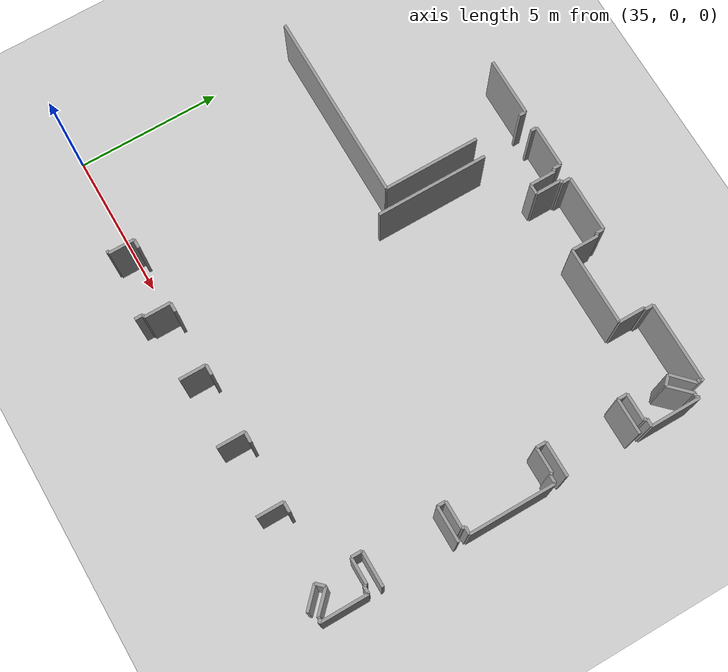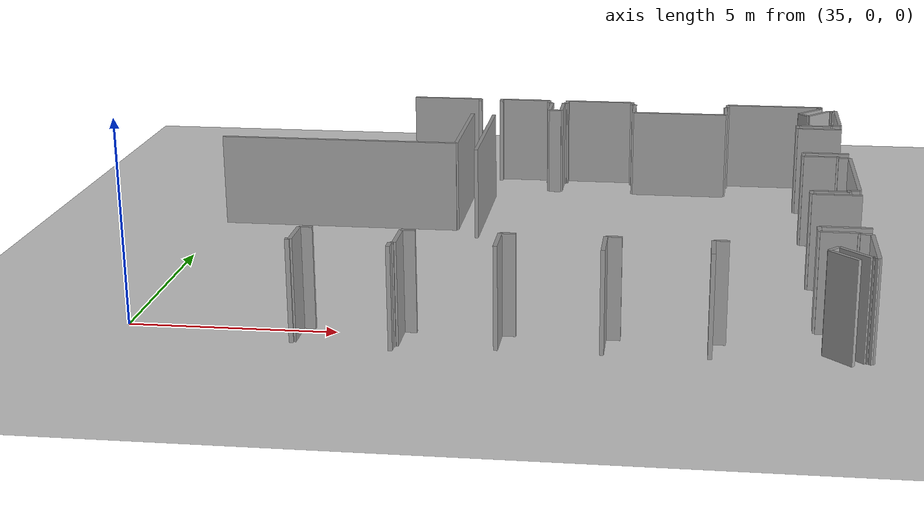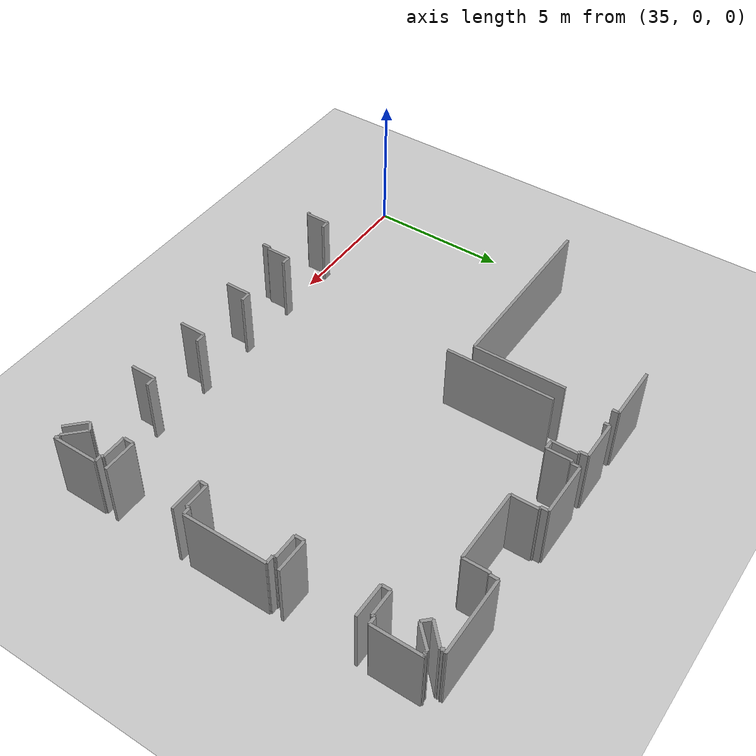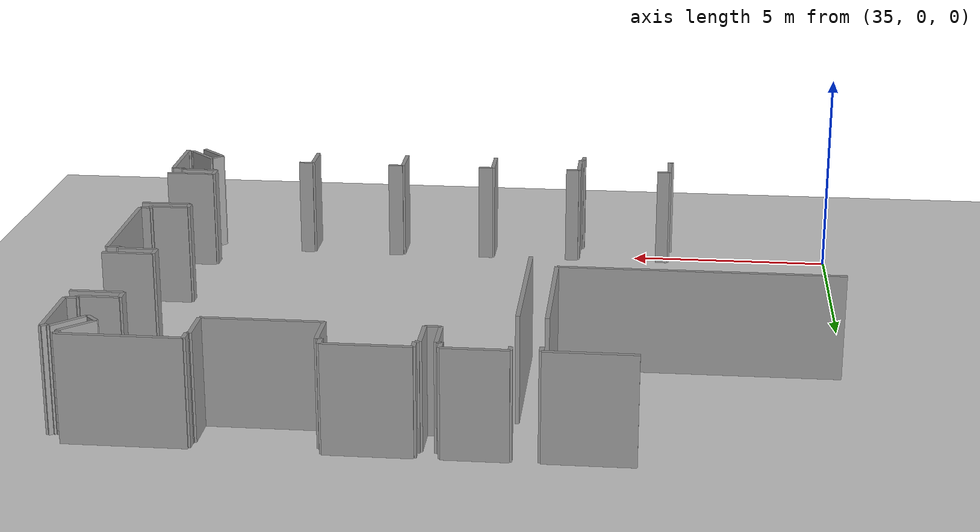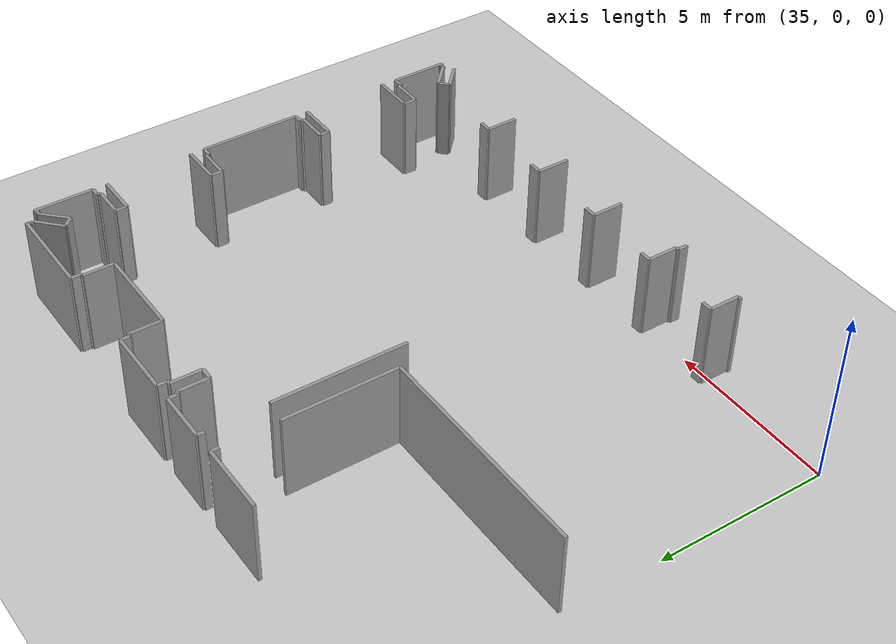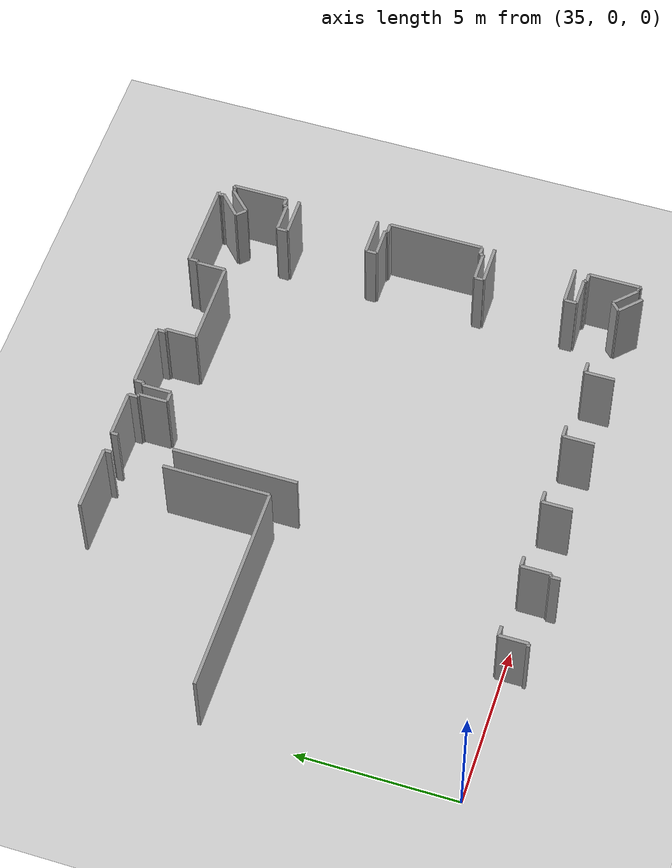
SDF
<sdf version="1.6">
 <world name="default">
  <model name="ground_plane">
   <static>1</static>
   <link name="link">
    <collision name="collision">
     <geometry><plane><normal>0 0 1</normal><size>100 100</size></plane></geometry>
     <surface><friction><ode><mu>100</mu><mu2>50</mu2></ode></friction></surface>
    </collision>
    <visual name="visual">
     <cast_shadows>0</cast_shadows>
     <geometry><plane><normal>0 0 1</normal><size>100 100</size></plane></geometry>
     <material>
      <script><uri>file://media/materials/scripts/gazebo.material</uri><name>Gazebo/Grey</name></script>
     </material>
    </visual>
   </link>
  </model>
  <model name="50010541">
   <static>1</static>
   <link name="Wall_268">
    <collision name="Wall_268_Collision">
     <geometry><box><size>0.360529623094 0.1 2.5</size></box></geometry>
     <pose>0.180264811547 0 1.25 0 0 0</pose>
    </collision>
    <visual name="Wall_268_Visual">
     <pose>0.180264811547 0 1.25 0 0 0</pose>
     <geometry><box><size>0.360529623094 0.1 2.5</size></box></geometry>
     <material>
      <script><uri>file://media/materials/scripts/gazebo.material</uri><name>Gazebo/Grey</name></script>
      <ambient>1 1 1 1</ambient>
     </material>
    </visual>
    <pose>101.927183172 -12.8033717137 0 0 0 3.14159265359</pose>
   </link>
   <link name="Wall_269">
    <collision name="Wall_269_Collision">
     <geometry><box><size>0.927855991266 0.1 2.5</size></box></geometry>
     <pose>0.463927995633 0 1.25 0 0 0</pose>
    </collision>
    <visual name="Wall_269_Visual">
     <pose>0.463927995633 0 1.25 0 0 0</pose>
     <geometry><box><size>0.927855991266 0.1 2.5</size></box></geometry>
     <material>
      <script><uri>file://media/materials/scripts/gazebo.material</uri><name>Gazebo/Grey</name></script>
      <ambient>1 1 1 1</ambient>
     </material>
    </visual>
    <pose>101.566653549 -12.8033717137 0 0 0 -1.57079632679</pose>
   </link>
   <link name="Wall_276">
    <collision name="Wall_276_Collision">
     <geometry><box><size>0.378302210148 0.1 2.5</size></box></geometry>
     <pose>0.189151105074 0 1.25 0 0 0</pose>
    </collision>
    <visual name="Wall_276_Visual">
     <pose>0.189151105074 0 1.25 0 0 0</pose>
     <geometry><box><size>0.378302210148 0.1 2.5</size></box></geometry>
     <material>
      <script><uri>file://media/materials/scripts/gazebo.material</uri><name>Gazebo/Grey</name></script>
      <ambient>1 1 1 1</ambient>
     </material>
    </visual>
    <pose>99.5215365671 -12.7844566032 0 0 0 3.14159265359</pose>
   </link>
   <link name="Wall_277">
    <collision name="Wall_277_Collision">
     <geometry><box><size>0.965686212281 0.1 2.5</size></box></geometry>
     <pose>0.48284310614 0 1.25 0 0 0</pose>
    </collision>
    <visual name="Wall_277_Visual">
     <pose>0.48284310614 0 1.25 0 0 0</pose>
     <geometry><box><size>0.965686212281 0.1 2.5</size></box></geometry>
     <material>
      <script><uri>file://media/materials/scripts/gazebo.material</uri><name>Gazebo/Grey</name></script>
      <ambient>1 1 1 1</ambient>
     </material>
    </visual>
    <pose>99.1432343569 -12.7844566032 0 0 0 -1.57079632679</pose>
   </link>
   <link name="Wall_282">
    <collision name="Wall_282_Collision">
     <geometry><box><size>0.36560750511 0.1 2.5</size></box></geometry>
     <pose>0.182803752555 0 1.25 0 0 0</pose>
    </collision>
    <visual name="Wall_282_Visual">
     <pose>0.182803752555 0 1.25 0 0 0</pose>
     <geometry><box><size>0.36560750511 0.1 2.5</size></box></geometry>
     <material>
      <script><uri>file://media/materials/scripts/gazebo.material</uri><name>Gazebo/Grey</name></script>
      <ambient>1 1 1 1</ambient>
     </material>
    </visual>
    <pose>97.1070036688 -12.8059106547 0 0 0 3.14159265359</pose>
   </link>
   <link name="Wall_283">
    <collision name="Wall_283_Collision">
     <geometry><box><size>0.930648826375 0.1 2.5</size></box></geometry>
     <pose>0.465324413187 0 1.25 0 0 0</pose>
    </collision>
    <visual name="Wall_283_Visual">
     <pose>0.465324413187 0 1.25 0 0 0</pose>
     <geometry><box><size>0.930648826375 0.1 2.5</size></box></geometry>
     <material>
      <script><uri>file://media/materials/scripts/gazebo.material</uri><name>Gazebo/Grey</name></script>
      <ambient>1 1 1 1</ambient>
     </material>
    </visual>
    <pose>96.7413961637 -12.8059106547 0 0 0 -1.57079632679</pose>
   </link>
   <link name="Wall_290">
    <collision name="Wall_290_Collision">
     <geometry><box><size>0.330062331002 0.1 2.5</size></box></geometry>
     <pose>0.165031165501 0 1.25 0 0 0</pose>
    </collision>
    <visual name="Wall_290_Visual">
     <pose>0.165031165501 0 1.25 0 0 0</pose>
     <geometry><box><size>0.330062331002 0.1 2.5</size></box></geometry>
     <material>
      <script><uri>file://media/materials/scripts/gazebo.material</uri><name>Gazebo/Grey</name></script>
      <ambient>1 1 1 1</ambient>
     </material>
    </visual>
    <pose>94.7927589402 -12.8196209361 0 0 0 3.14159265359</pose>
   </link>
   <link name="Wall_291">
    <collision name="Wall_291_Collision">
     <geometry><box><size>0.911098980615 0.1 2.5</size></box></geometry>
     <pose>0.455549490308 0 1.25 0 0 0</pose>
    </collision>
    <visual name="Wall_291_Visual">
     <pose>0.455549490308 0 1.25 0 0 0</pose>
     <geometry><box><size>0.911098980615 0.1 2.5</size></box></geometry>
     <material>
      <script><uri>file://media/materials/scripts/gazebo.material</uri><name>Gazebo/Grey</name></script>
      <ambient>1 1 1 1</ambient>
     </material>
    </visual>
    <pose>94.4626966092 -12.8196209361 0 0 0 -1.57079632679</pose>
   </link>
   <link name="Wall_292">
    <collision name="Wall_292_Collision">
     <geometry><box><size>0.0875934647659 0.1 2.5</size></box></geometry>
     <pose>0.0437967323829 0 1.25 0 0 0</pose>
    </collision>
    <visual name="Wall_292_Visual">
     <pose>0.0437967323829 0 1.25 0 0 0</pose>
     <geometry><box><size>0.0875934647659 0.1 2.5</size></box></geometry>
     <material>
      <script><uri>file://media/materials/scripts/gazebo.material</uri><name>Gazebo/Grey</name></script>
      <ambient>1 1 1 1</ambient>
     </material>
    </visual>
    <pose>94.4626966092 -13.7307199167 0 0 0 3.14159265359</pose>
   </link>
   <link name="Wall_293">
    <collision name="Wall_293_Collision">
     <geometry><box><size>0.285376969266 0.1 2.5</size></box></geometry>
     <pose>0.142688484633 0 1.25 0 0 0</pose>
    </collision>
    <visual name="Wall_293_Visual">
     <pose>0.142688484633 0 1.25 0 0 0</pose>
     <geometry><box><size>0.285376969266 0.1 2.5</size></box></geometry>
     <material>
      <script><uri>file://media/materials/scripts/gazebo.material</uri><name>Gazebo/Grey</name></script>
      <ambient>1 1 1 1</ambient>
     </material>
    </visual>
    <pose>94.3751031445 -13.7307199167 0 0 0 -1.57079632679</pose>
   </link>
   <link name="Wall_298">
    <collision name="Wall_298_Collision">
     <geometry><box><size>0.314828684956 0.1 2.5</size></box></geometry>
     <pose>0.157414342478 0 1.25 0 0 0</pose>
    </collision>
    <visual name="Wall_298_Visual">
     <pose>0.157414342478 0 1.25 0 0 0</pose>
     <geometry><box><size>0.314828684956 0.1 2.5</size></box></geometry>
     <material>
      <script><uri>file://media/materials/scripts/gazebo.material</uri><name>Gazebo/Grey</name></script>
      <ambient>1 1 1 1</ambient>
     </material>
    </visual>
    <pose>92.39853757 -12.8356162645 0 0 0 3.14159265359</pose>
   </link>
   <link name="Wall_299">
    <collision name="Wall_299_Collision">
     <geometry><box><size>0.892437764209 0.1 2.5</size></box></geometry>
     <pose>0.446218882104 0 1.25 0 0 0</pose>
    </collision>
    <visual name="Wall_299_Visual">
     <pose>0.446218882104 0 1.25 0 0 0</pose>
     <geometry><box><size>0.892437764209 0.1 2.5</size></box></geometry>
     <material>
      <script><uri>file://media/materials/scripts/gazebo.material</uri><name>Gazebo/Grey</name></script>
      <ambient>1 1 1 1</ambient>
     </material>
    </visual>
    <pose>92.083708885 -12.8356162645 0 0 0 -1.57079632679</pose>
   </link>
   <link name="Wall_300">
    <collision name="Wall_300_Collision">
     <geometry><box><size>0.109174463331 0.1 2.5</size></box></geometry>
     <pose>0.0545872316657 0 1.25 0 0 0</pose>
    </collision>
    <visual name="Wall_300_Visual">
     <pose>0.0545872316657 0 1.25 0 0 0</pose>
     <geometry><box><size>0.109174463331 0.1 2.5</size></box></geometry>
     <material>
      <script><uri>file://media/materials/scripts/gazebo.material</uri><name>Gazebo/Grey</name></script>
      <ambient>1 1 1 1</ambient>
     </material>
    </visual>
    <pose>92.083708885 -13.7280540287 0 0 0 3.14159265359</pose>
   </link>
   <link name="Wall_314">
    <collision name="Wall_314_Collision">
     <geometry><box><size>3.8722658779 0.1 2.5</size></box></geometry>
     <pose>1.93613293895 0 1.25 0 0 0</pose>
    </collision>
    <visual name="Wall_314_Visual">
     <pose>1.93613293895 0 1.25 0 0 0</pose>
     <geometry><box><size>3.8722658779 0.1 2.5</size></box></geometry>
     <material>
      <script><uri>file://media/materials/scripts/gazebo.material</uri><name>Gazebo/Grey</name></script>
      <ambient>1 1 1 1</ambient>
     </material>
    </visual>
    <pose>95.215492618 -5.82750434794 0 0 0 1.57079632679</pose>
   </link>
   <link name="Wall_315">
    <collision name="Wall_315_Collision">
     <geometry><box><size>0.201591916012 0.1 2.5</size></box></geometry>
     <pose>0.100795958006 0 1.25 0 0 0</pose>
    </collision>
    <visual name="Wall_315_Visual">
     <pose>0.100795958006 0 1.25 0 0 0</pose>
     <geometry><box><size>0.201591916012 0.1 2.5</size></box></geometry>
     <material>
      <script><uri>file://media/materials/scripts/gazebo.material</uri><name>Gazebo/Grey</name></script>
      <ambient>1 1 1 1</ambient>
     </material>
    </visual>
    <pose>95.215492618 -0.221649549973 0 0 0 1.57079632679</pose>
   </link>
   <link name="Wall_316">
    <collision name="Wall_316_Collision">
     <geometry><box><size>1.4497353154 0.1 2.5</size></box></geometry>
     <pose>0.7248676577 0 1.25 0 0 0</pose>
    </collision>
    <visual name="Wall_316_Visual">
     <pose>0.7248676577 0 1.25 0 0 0</pose>
     <geometry><box><size>1.4497353154 0.1 2.5</size></box></geometry>
     <material>
      <script><uri>file://media/materials/scripts/gazebo.material</uri><name>Gazebo/Grey</name></script>
      <ambient>1 1 1 1</ambient>
     </material>
    </visual>
    <pose>95.215492618 -0.0200576339609 0 0 0 0.0</pose>
   </link>
   <link name="Wall_317">
    <collision name="Wall_317_Collision">
     <geometry><box><size>0.281568557755 0.1 2.5</size></box></geometry>
     <pose>0.140784278877 0 1.25 0 0 0</pose>
    </collision>
    <visual name="Wall_317_Visual">
     <pose>0.140784278877 0 1.25 0 0 0</pose>
     <geometry><box><size>0.281568557755 0.1 2.5</size></box></geometry>
     <material>
      <script><uri>file://media/materials/scripts/gazebo.material</uri><name>Gazebo/Grey</name></script>
      <ambient>1 1 1 1</ambient>
     </material>
    </visual>
    <pose>96.6652279334 -0.0200576339609 0 0 0 -1.57079632679</pose>
   </link>
   <link name="Wall_318">
    <collision name="Wall_318_Collision">
     <geometry><box><size>0.101557640308 0.1 2.5</size></box></geometry>
     <pose>0.0507788201541 0 1.25 0 0 0</pose>
    </collision>
    <visual name="Wall_318_Visual">
     <pose>0.0507788201541 0 1.25 0 0 0</pose>
     <geometry><box><size>0.101557640308 0.1 2.5</size></box></geometry>
     <material>
      <script><uri>file://media/materials/scripts/gazebo.material</uri><name>Gazebo/Grey</name></script>
      <ambient>1 1 1 1</ambient>
     </material>
    </visual>
    <pose>96.6652279334 -0.301626191715 0 0 0 0.0</pose>
   </link>
   <link name="Wall_319">
    <collision name="Wall_319_Collision">
     <geometry><box><size>0.899927640181 0.1 2.5</size></box></geometry>
     <pose>0.449963820091 0 1.25 0 0 0</pose>
    </collision>
    <visual name="Wall_319_Visual">
     <pose>0.449963820091 0 1.25 0 0 0</pose>
     <geometry><box><size>0.899927640181 0.1 2.5</size></box></geometry>
     <material>
      <script><uri>file://media/materials/scripts/gazebo.material</uri><name>Gazebo/Grey</name></script>
      <ambient>1 1 1 1</ambient>
     </material>
    </visual>
    <pose>96.7667855737 -0.301626191715 0 0 0 -1.57079632679</pose>
   </link>
   <link name="Wall_320">
    <collision name="Wall_320_Collision">
     <geometry><box><size>0.347834918056 0.1 2.5</size></box></geometry>
     <pose>0.173917459028 0 1.25 0 0 0</pose>
    </collision>
    <visual name="Wall_320_Visual">
     <pose>0.173917459028 0 1.25 0 0 0</pose>
     <geometry><box><size>0.347834918056 0.1 2.5</size></box></geometry>
     <material>
      <script><uri>file://media/materials/scripts/gazebo.material</uri><name>Gazebo/Grey</name></script>
      <ambient>1 1 1 1</ambient>
     </material>
    </visual>
    <pose>96.7667855737 -1.2015538319 0 0 0 0.0</pose>
   </link>
   <link name="Wall_321">
    <collision name="Wall_321_Collision">
     <geometry><box><size>0.892691658309 0.1 2.5</size></box></geometry>
     <pose>0.446345829155 0 1.25 0 0 0</pose>
    </collision>
    <visual name="Wall_321_Visual">
     <pose>0.446345829155 0 1.25 0 0 0</pose>
     <geometry><box><size>0.892691658309 0.1 2.5</size></box></geometry>
     <material>
      <script><uri>file://media/materials/scripts/gazebo.material</uri><name>Gazebo/Grey</name></script>
      <ambient>1 1 1 1</ambient>
     </material>
    </visual>
    <pose>97.1146204918 -1.2015538319 0 0 0 1.57079632679</pose>
   </link>
   <link name="Wall_322">
    <collision name="Wall_322_Collision">
     <geometry><box><size>0.095210287789 0.1 2.5</size></box></geometry>
     <pose>0.0476051438945 0 1.25 0 0 0</pose>
    </collision>
    <visual name="Wall_322_Visual">
     <pose>0.0476051438945 0 1.25 0 0 0</pose>
     <geometry><box><size>0.095210287789 0.1 2.5</size></box></geometry>
     <material>
      <script><uri>file://media/materials/scripts/gazebo.material</uri><name>Gazebo/Grey</name></script>
      <ambient>1 1 1 1</ambient>
     </material>
    </visual>
    <pose>97.1146204918 -0.308862173587 0 0 0 0.0</pose>
   </link>
   <link name="Wall_323">
    <collision name="Wall_323_Collision">
     <geometry><box><size>0.290327904231 0.1 2.5</size></box></geometry>
     <pose>0.145163952116 0 1.25 0 0 0</pose>
    </collision>
    <visual name="Wall_323_Visual">
     <pose>0.145163952116 0 1.25 0 0 0</pose>
     <geometry><box><size>0.290327904231 0.1 2.5</size></box></geometry>
     <material>
      <script><uri>file://media/materials/scripts/gazebo.material</uri><name>Gazebo/Grey</name></script>
      <ambient>1 1 1 1</ambient>
     </material>
    </visual>
    <pose>97.2098307796 -0.308862173587 0 0 0 1.57079632679</pose>
   </link>
   <link name="Wall_324">
    <collision name="Wall_324_Collision">
     <geometry><box><size>1.95244563493 0.1 2.5</size></box></geometry>
     <pose>0.976222817463 0 1.25 0 0 0</pose>
    </collision>
    <visual name="Wall_324_Visual">
     <pose>0.976222817463 0 1.25 0 0 0</pose>
     <geometry><box><size>1.95244563493 0.1 2.5</size></box></geometry>
     <material>
      <script><uri>file://media/materials/scripts/gazebo.material</uri><name>Gazebo/Grey</name></script>
      <ambient>1 1 1 1</ambient>
     </material>
    </visual>
    <pose>97.2098307796 -0.0185342693563 0 0 0 0.0</pose>
   </link>
   <link name="Wall_325">
    <collision name="Wall_325_Collision">
     <geometry><box><size>0.262907341348 0.1 2.5</size></box></geometry>
     <pose>0.131453670674 0 1.25 0 0 0</pose>
    </collision>
    <visual name="Wall_325_Visual">
     <pose>0.131453670674 0 1.25 0 0 0</pose>
     <geometry><box><size>0.262907341348 0.1 2.5</size></box></geometry>
     <material>
      <script><uri>file://media/materials/scripts/gazebo.material</uri><name>Gazebo/Grey</name></script>
      <ambient>1 1 1 1</ambient>
     </material>
    </visual>
    <pose>99.1622764145 -0.0185342693563 0 0 0 -1.57079632679</pose>
   </link>
   <link name="Wall_326">
    <collision name="Wall_326_Collision">
     <geometry><box><size>0.095210287789 0.1 2.5</size></box></geometry>
     <pose>0.0476051438945 0 1.25 0 0 0</pose>
    </collision>
    <visual name="Wall_326_Visual">
     <pose>0.0476051438945 0 1.25 0 0 0</pose>
     <geometry><box><size>0.095210287789 0.1 2.5</size></box></geometry>
     <material>
      <script><uri>file://media/materials/scripts/gazebo.material</uri><name>Gazebo/Grey</name></script>
      <ambient>1 1 1 1</ambient>
     </material>
    </visual>
    <pose>99.1622764145 -0.281441610704 0 0 0 0.0</pose>
   </link>
   <link name="Wall_327">
    <collision name="Wall_327_Collision">
     <geometry><box><size>0.946644154723 0.1 2.5</size></box></geometry>
     <pose>0.473322077362 0 1.25 0 0 0</pose>
    </collision>
    <visual name="Wall_327_Visual">
     <pose>0.473322077362 0 1.25 0 0 0</pose>
     <geometry><box><size>0.946644154723 0.1 2.5</size></box></geometry>
     <material>
      <script><uri>file://media/materials/scripts/gazebo.material</uri><name>Gazebo/Grey</name></script>
      <ambient>1 1 1 1</ambient>
     </material>
    </visual>
    <pose>99.2574867023 -0.281441610704 0 0 0 -1.57079632679</pose>
   </link>
   <link name="Wall_328">
    <collision name="Wall_328_Collision">
     <geometry><box><size>2.68493011565 0.1 2.5</size></box></geometry>
     <pose>1.34246505782 0 1.25 0 0 0</pose>
    </collision>
    <visual name="Wall_328_Visual">
     <pose>1.34246505782 0 1.25 0 0 0</pose>
     <geometry><box><size>2.68493011565 0.1 2.5</size></box></geometry>
     <material>
      <script><uri>file://media/materials/scripts/gazebo.material</uri><name>Gazebo/Grey</name></script>
      <ambient>1 1 1 1</ambient>
     </material>
    </visual>
    <pose>99.2574867023 -1.22808576543 0 0 0 0.0</pose>
   </link>
   <link name="Wall_329">
    <collision name="Wall_329_Collision">
     <geometry><box><size>0.904751628096 0.1 2.5</size></box></geometry>
     <pose>0.452375814048 0 1.25 0 0 0</pose>
    </collision>
    <visual name="Wall_329_Visual">
     <pose>0.452375814048 0 1.25 0 0 0</pose>
     <geometry><box><size>0.904751628096 0.1 2.5</size></box></geometry>
     <material>
      <script><uri>file://media/materials/scripts/gazebo.material</uri><name>Gazebo/Grey</name></script>
      <ambient>1 1 1 1</ambient>
     </material>
    </visual>
    <pose>101.942416818 -1.22808576543 0 0 0 1.57079632679</pose>
   </link>
   <link name="Wall_330">
    <collision name="Wall_330_Collision">
     <geometry><box><size>0.0647429956965 0.1 2.5</size></box></geometry>
     <pose>0.0323714978483 0 1.25 0 0 0</pose>
    </collision>
    <visual name="Wall_330_Visual">
     <pose>0.0323714978483 0 1.25 0 0 0</pose>
     <geometry><box><size>0.0647429956965 0.1 2.5</size></box></geometry>
     <material>
      <script><uri>file://media/materials/scripts/gazebo.material</uri><name>Gazebo/Grey</name></script>
      <ambient>1 1 1 1</ambient>
     </material>
    </visual>
    <pose>101.942416818 -0.323334137331 0 0 0 0.0</pose>
   </link>
   <link name="Wall_331">
    <collision name="Wall_331_Collision">
     <geometry><box><size>0.290327904231 0.1 2.5</size></box></geometry>
     <pose>0.145163952116 0 1.25 0 0 0</pose>
    </collision>
    <visual name="Wall_331_Visual">
     <pose>0.145163952116 0 1.25 0 0 0</pose>
     <geometry><box><size>0.290327904231 0.1 2.5</size></box></geometry>
     <material>
      <script><uri>file://media/materials/scripts/gazebo.material</uri><name>Gazebo/Grey</name></script>
      <ambient>1 1 1 1</ambient>
     </material>
    </visual>
    <pose>102.007159814 -0.323334137331 0 0 0 1.57079632679</pose>
   </link>
   <link name="Wall_332">
    <collision name="Wall_332_Collision">
     <geometry><box><size>2.76363728689 0.1 2.5</size></box></geometry>
     <pose>1.38181864344 0 1.25 0 0 0</pose>
    </collision>
    <visual name="Wall_332_Visual">
     <pose>1.38181864344 0 1.25 0 0 0</pose>
     <geometry><box><size>2.76363728689 0.1 2.5</size></box></geometry>
     <material>
      <script><uri>file://media/materials/scripts/gazebo.material</uri><name>Gazebo/Grey</name></script>
      <ambient>1 1 1 1</ambient>
     </material>
    </visual>
    <pose>102.007159814 -0.0330062331002 0 0 0 0.0</pose>
   </link>
   <link name="Wall_333">
    <collision name="Wall_333_Collision">
     <geometry><box><size>0.13385999132 0.1 2.5</size></box></geometry>
     <pose>0.0669299956601 0 1.25 0 0 0</pose>
    </collision>
    <visual name="Wall_333_Visual">
     <pose>0.0669299956601 0 1.25 0 0 0</pose>
     <geometry><box><size>0.13385999132 0.1 2.5</size></box></geometry>
     <material>
      <script><uri>file://media/materials/scripts/gazebo.material</uri><name>Gazebo/Grey</name></script>
      <ambient>1 1 1 1</ambient>
     </material>
    </visual>
    <pose>104.770797101 -0.0330062331002 0 0 0 -2.50833397872</pose>
   </link>
   <link name="Wall_334">
    <collision name="Wall_334_Collision">
     <geometry><box><size>0.121413688078 0.1 2.5</size></box></geometry>
     <pose>0.0607068440388 0 1.25 0 0 0</pose>
    </collision>
    <visual name="Wall_334_Visual">
     <pose>0.0607068440388 0 1.25 0 0 0</pose>
     <geometry><box><size>0.121413688078 0.1 2.5</size></box></geometry>
     <material>
      <script><uri>file://media/materials/scripts/gazebo.material</uri><name>Gazebo/Grey</name></script>
      <ambient>1 1 1 1</ambient>
     </material>
    </visual>
    <pose>104.662892108 -0.112221192541 0 0 0 -0.932313996441</pose>
   </link>
   <link name="Wall_335">
    <collision name="Wall_335_Collision">
     <geometry><box><size>0.914413412375 0.1 2.5</size></box></geometry>
     <pose>0.457206706187 0 1.25 0 0 0</pose>
    </collision>
    <visual name="Wall_335_Visual">
     <pose>0.457206706187 0 1.25 0 0 0</pose>
     <geometry><box><size>0.914413412375 0.1 2.5</size></box></geometry>
     <material>
      <script><uri>file://media/materials/scripts/gazebo.material</uri><name>Gazebo/Grey</name></script>
      <ambient>1 1 1 1</ambient>
     </material>
    </visual>
    <pose>104.735251926 -0.209716527236 0 0 0 -2.37936394899</pose>
   </link>
   <link name="Wall_336">
    <collision name="Wall_336_Collision">
     <geometry><box><size>0.365082788771 0.1 2.5</size></box></geometry>
     <pose>0.182541394385 0 1.25 0 0 0</pose>
    </collision>
    <visual name="Wall_336_Visual">
     <pose>0.182541394385 0 1.25 0 0 0</pose>
     <geometry><box><size>0.365082788771 0.1 2.5</size></box></geometry>
     <material>
      <script><uri>file://media/materials/scripts/gazebo.material</uri><name>Gazebo/Grey</name></script>
      <ambient>1 1 1 1</ambient>
     </material>
    </visual>
    <pose>104.073857794 -0.841151155853 0 0 0 -0.792036865966</pose>
   </link>
   <link name="Wall_337">
    <collision name="Wall_337_Collision">
     <geometry><box><size>0.918759270178 0.1 2.5</size></box></geometry>
     <pose>0.459379635089 0 1.25 0 0 0</pose>
    </collision>
    <visual name="Wall_337_Visual">
     <pose>0.459379635089 0 1.25 0 0 0</pose>
     <geometry><box><size>0.918759270178 0.1 2.5</size></box></geometry>
     <material>
      <script><uri>file://media/materials/scripts/gazebo.material</uri><name>Gazebo/Grey</name></script>
      <ambient>1 1 1 1</ambient>
     </material>
    </visual>
    <pose>104.330290836 -1.10101176799 0 0 0 0.790771829309</pose>
   </link>
   <link name="Wall_338">
    <collision name="Wall_338_Collision">
     <geometry><box><size>0.0821363112541 0.1 2.5</size></box></geometry>
     <pose>0.0410681556271 0 1.25 0 0 0</pose>
    </collision>
    <visual name="Wall_338_Visual">
     <pose>0.0410681556271 0 1.25 0 0 0</pose>
     <geometry><box><size>0.0821363112541 0.1 2.5</size></box></geometry>
     <material>
      <script><uri>file://media/materials/scripts/gazebo.material</uri><name>Gazebo/Grey</name></script>
      <ambient>1 1 1 1</ambient>
     </material>
    </visual>
    <pose>104.976451322 -0.447869193759 0 0 0 -0.779933736913</pose>
   </link>
   <link name="Wall_339">
    <collision name="Wall_339_Collision">
     <geometry><box><size>0.148610541625 0.1 2.5</size></box></geometry>
     <pose>0.0743052708126 0 1.25 0 0 0</pose>
    </collision>
    <visual name="Wall_339_Visual">
     <pose>0.0743052708126 0 1.25 0 0 0</pose>
     <geometry><box><size>0.148610541625 0.1 2.5</size></box></geometry>
     <material>
      <script><uri>file://media/materials/scripts/gazebo.material</uri><name>Gazebo/Grey</name></script>
      <ambient>1 1 1 1</ambient>
     </material>
    </visual>
    <pose>105.034846965 -0.505630101685 0 0 0 0.652726884963</pose>
   </link>
   <link name="Wall_340">
    <collision name="Wall_340_Collision">
     <geometry><box><size>1.73523923172 0.1 2.5</size></box></geometry>
     <pose>0.867619615858 0 1.25 0 0 0</pose>
    </collision>
    <visual name="Wall_340_Visual">
     <pose>0.867619615858 0 1.25 0 0 0</pose>
     <geometry><box><size>1.73523923172 0.1 2.5</size></box></geometry>
     <material>
      <script><uri>file://media/materials/scripts/gazebo.material</uri><name>Gazebo/Grey</name></script>
      <ambient>1 1 1 1</ambient>
     </material>
    </visual>
    <pose>105.152907722 -0.415370748861 0 0 0 -1.57079632679</pose>
   </link>
   <link name="Wall_341">
    <collision name="Wall_341_Collision">
     <geometry><box><size>0.265319335305 0.1 2.5</size></box></geometry>
     <pose>0.132659667653 0 1.25 0 0 0</pose>
    </collision>
    <visual name="Wall_341_Visual">
     <pose>0.132659667653 0 1.25 0 0 0</pose>
     <geometry><box><size>0.265319335305 0.1 2.5</size></box></geometry>
     <material>
      <script><uri>file://media/materials/scripts/gazebo.material</uri><name>Gazebo/Grey</name></script>
      <ambient>1 1 1 1</ambient>
     </material>
    </visual>
    <pose>105.152907722 -2.15060998058 0 0 0 3.14159265359</pose>
   </link>
   <link name="Wall_342">
    <collision name="Wall_342_Collision">
     <geometry><box><size>0.0995264875021 0.1 2.5</size></box></geometry>
     <pose>0.049763243751 0 1.25 0 0 0</pose>
    </collision>
    <visual name="Wall_342_Visual">
     <pose>0.049763243751 0 1.25 0 0 0</pose>
     <geometry><box><size>0.0995264875021 0.1 2.5</size></box></geometry>
     <material>
      <script><uri>file://media/materials/scripts/gazebo.material</uri><name>Gazebo/Grey</name></script>
      <ambient>1 1 1 1</ambient>
     </material>
    </visual>
    <pose>104.887588387 -2.15060998058 0 0 0 -1.57079632679</pose>
   </link>
   <link name="Wall_343">
    <collision name="Wall_343_Collision">
     <geometry><box><size>0.934330290836 0.1 2.5</size></box></geometry>
     <pose>0.467165145418 0 1.25 0 0 0</pose>
    </collision>
    <visual name="Wall_343_Visual">
     <pose>0.467165145418 0 1.25 0 0 0</pose>
     <geometry><box><size>0.934330290836 0.1 2.5</size></box></geometry>
     <material>
      <script><uri>file://media/materials/scripts/gazebo.material</uri><name>Gazebo/Grey</name></script>
      <ambient>1 1 1 1</ambient>
     </material>
    </visual>
    <pose>104.887588387 -2.25013646808 0 0 0 3.14159265359</pose>
   </link>
   <link name="Wall_344">
    <collision name="Wall_344_Collision">
     <geometry><box><size>0.327904231145 0.1 2.5</size></box></geometry>
     <pose>0.163952115573 0 1.25 0 0 0</pose>
    </collision>
    <visual name="Wall_344_Visual">
     <pose>0.163952115573 0 1.25 0 0 0</pose>
     <geometry><box><size>0.327904231145 0.1 2.5</size></box></geometry>
     <material>
      <script><uri>file://media/materials/scripts/gazebo.material</uri><name>Gazebo/Grey</name></script>
      <ambient>1 1 1 1</ambient>
     </material>
    </visual>
    <pose>103.953258096 -2.25013646808 0 0 0 -1.57079632679</pose>
   </link>
   <link name="Wall_345">
    <collision name="Wall_345_Collision">
     <geometry><box><size>1.21234433118 0.1 2.5</size></box></geometry>
     <pose>0.60617216559 0 1.25 0 0 0</pose>
    </collision>
    <visual name="Wall_345_Visual">
     <pose>0.60617216559 0 1.25 0 0 0</pose>
     <geometry><box><size>1.21234433118 0.1 2.5</size></box></geometry>
     <material>
      <script><uri>file://media/materials/scripts/gazebo.material</uri><name>Gazebo/Grey</name></script>
      <ambient>1 1 1 1</ambient>
     </material>
    </visual>
    <pose>103.953258096 -2.57804069922 0 0 0 0.0</pose>
   </link>
   <link name="Wall_346">
    <collision name="Wall_346_Collision">
     <geometry><box><size>1.20599697866 0.1 2.5</size></box></geometry>
     <pose>0.60299848933 0 1.25 0 0 0</pose>
    </collision>
    <visual name="Wall_346_Visual">
     <pose>0.60299848933 0 1.25 0 0 0</pose>
     <geometry><box><size>1.20599697866 0.1 2.5</size></box></geometry>
     <material>
      <script><uri>file://media/materials/scripts/gazebo.material</uri><name>Gazebo/Grey</name></script>
      <ambient>1 1 1 1</ambient>
     </material>
    </visual>
    <pose>105.165602427 -5.14757594607 0 0 0 3.14159265359</pose>
   </link>
   <link name="Wall_347">
    <collision name="Wall_347_Collision">
     <geometry><box><size>0.334505477765 0.1 2.5</size></box></geometry>
     <pose>0.167252738883 0 1.25 0 0 0</pose>
    </collision>
    <visual name="Wall_347_Visual">
     <pose>0.167252738883 0 1.25 0 0 0</pose>
     <geometry><box><size>0.334505477765 0.1 2.5</size></box></geometry>
     <material>
      <script><uri>file://media/materials/scripts/gazebo.material</uri><name>Gazebo/Grey</name></script>
      <ambient>1 1 1 1</ambient>
     </material>
    </visual>
    <pose>103.959605449 -5.14757594607 0 0 0 -1.57079632679</pose>
   </link>
   <link name="Wall_348">
    <collision name="Wall_348_Collision">
     <geometry><box><size>0.902593528239 0.1 2.5</size></box></geometry>
     <pose>0.45129676412 0 1.25 0 0 0</pose>
    </collision>
    <visual name="Wall_348_Visual">
     <pose>0.45129676412 0 1.25 0 0 0</pose>
     <geometry><box><size>0.902593528239 0.1 2.5</size></box></geometry>
     <material>
      <script><uri>file://media/materials/scripts/gazebo.material</uri><name>Gazebo/Grey</name></script>
      <ambient>1 1 1 1</ambient>
     </material>
    </visual>
    <pose>103.959605449 -5.48208142384 0 0 0 0.0</pose>
   </link>
   <link name="Wall_349">
    <collision name="Wall_349_Collision">
     <geometry><box><size>0.0881012529674 0.1 2.5</size></box></geometry>
     <pose>0.0440506264837 0 1.25 0 0 0</pose>
    </collision>
    <visual name="Wall_349_Visual">
     <pose>0.0440506264837 0 1.25 0 0 0</pose>
     <geometry><box><size>0.0881012529674 0.1 2.5</size></box></geometry>
     <material>
      <script><uri>file://media/materials/scripts/gazebo.material</uri><name>Gazebo/Grey</name></script>
      <ambient>1 1 1 1</ambient>
     </material>
    </visual>
    <pose>104.862198977 -5.48208142384 0 0 0 -1.57079632679</pose>
   </link>
   <link name="Wall_350">
    <collision name="Wall_350_Collision">
     <geometry><box><size>0.294517156894 0.1 2.5</size></box></geometry>
     <pose>0.147258578447 0 1.25 0 0 0</pose>
    </collision>
    <visual name="Wall_350_Visual">
     <pose>0.147258578447 0 1.25 0 0 0</pose>
     <geometry><box><size>0.294517156894 0.1 2.5</size></box></geometry>
     <material>
      <script><uri>file://media/materials/scripts/gazebo.material</uri><name>Gazebo/Grey</name></script>
      <ambient>1 1 1 1</ambient>
     </material>
    </visual>
    <pose>104.862198977 -5.57018267681 0 0 0 0.0</pose>
   </link>
   <link name="Wall_351">
    <collision name="Wall_351_Collision">
     <geometry><box><size>2.97932032549 0.1 2.5</size></box></geometry>
     <pose>1.48966016275 0 1.25 0 0 0</pose>
    </collision>
    <visual name="Wall_351_Visual">
     <pose>1.48966016275 0 1.25 0 0 0</pose>
     <geometry><box><size>2.97932032549 0.1 2.5</size></box></geometry>
     <material>
      <script><uri>file://media/materials/scripts/gazebo.material</uri><name>Gazebo/Grey</name></script>
      <ambient>1 1 1 1</ambient>
     </material>
    </visual>
    <pose>105.156716134 -5.57018267681 0 0 0 -1.57079632679</pose>
   </link>
   <link name="Wall_352">
    <collision name="Wall_352_Collision">
     <geometry><box><size>0.257702512282 0.1 2.5</size></box></geometry>
     <pose>0.128851256141 0 1.25 0 0 0</pose>
    </collision>
    <visual name="Wall_352_Visual">
     <pose>0.128851256141 0 1.25 0 0 0</pose>
     <geometry><box><size>0.257702512282 0.1 2.5</size></box></geometry>
     <material>
      <script><uri>file://media/materials/scripts/gazebo.material</uri><name>Gazebo/Grey</name></script>
      <ambient>1 1 1 1</ambient>
     </material>
    </visual>
    <pose>105.156716134 -8.5495030023 0 0 0 3.14159265359</pose>
   </link>
   <link name="Wall_353">
    <collision name="Wall_353_Collision">
     <geometry><box><size>0.107270257576 0.1 2.5</size></box></geometry>
     <pose>0.0536351287878 0 1.25 0 0 0</pose>
    </collision>
    <visual name="Wall_353_Visual">
     <pose>0.0536351287878 0 1.25 0 0 0</pose>
     <geometry><box><size>0.107270257576 0.1 2.5</size></box></geometry>
     <material>
      <script><uri>file://media/materials/scripts/gazebo.material</uri><name>Gazebo/Grey</name></script>
      <ambient>1 1 1 1</ambient>
     </material>
    </visual>
    <pose>104.899013621 -8.5495030023 0 0 0 -1.57079632679</pose>
   </link>
   <link name="Wall_354">
    <collision name="Wall_354_Collision">
     <geometry><box><size>0.926713467813 0.1 2.5</size></box></geometry>
     <pose>0.463356733906 0 1.25 0 0 0</pose>
    </collision>
    <visual name="Wall_354_Visual">
     <pose>0.463356733906 0 1.25 0 0 0</pose>
     <geometry><box><size>0.926713467813 0.1 2.5</size></box></geometry>
     <material>
      <script><uri>file://media/materials/scripts/gazebo.material</uri><name>Gazebo/Grey</name></script>
      <ambient>1 1 1 1</ambient>
     </material>
    </visual>
    <pose>104.899013621 -8.65677325987 0 0 0 3.14159265359</pose>
   </link>
   <link name="Wall_355">
    <collision name="Wall_355_Collision">
     <geometry><box><size>0.283980551712 0.1 2.5</size></box></geometry>
     <pose>0.141990275856 0 1.25 0 0 0</pose>
    </collision>
    <visual name="Wall_355_Visual">
     <pose>0.141990275856 0 1.25 0 0 0</pose>
     <geometry><box><size>0.283980551712 0.1 2.5</size></box></geometry>
     <material>
      <script><uri>file://media/materials/scripts/gazebo.material</uri><name>Gazebo/Grey</name></script>
      <ambient>1 1 1 1</ambient>
     </material>
    </visual>
    <pose>103.972300154 -8.65677325987 0 0 0 -1.57079632679</pose>
   </link>
   <link name="Wall_356">
    <collision name="Wall_356_Collision">
     <geometry><box><size>1.22376956571 0.1 2.5</size></box></geometry>
     <pose>0.611884782857 0 1.25 0 0 0</pose>
    </collision>
    <visual name="Wall_356_Visual">
     <pose>0.611884782857 0 1.25 0 0 0</pose>
     <geometry><box><size>1.22376956571 0.1 2.5</size></box></geometry>
     <material>
      <script><uri>file://media/materials/scripts/gazebo.material</uri><name>Gazebo/Grey</name></script>
      <ambient>1 1 1 1</ambient>
     </material>
    </visual>
    <pose>103.972300154 -8.94075381159 0 0 0 0.0</pose>
   </link>
   <link name="Wall_357">
    <collision name="Wall_357_Collision">
     <geometry><box><size>1.21615274269 0.1 2.5</size></box></geometry>
     <pose>0.608076371346 0 1.25 0 0 0</pose>
    </collision>
    <visual name="Wall_357_Visual">
     <pose>0.608076371346 0 1.25 0 0 0</pose>
     <geometry><box><size>1.21615274269 0.1 2.5</size></box></geometry>
     <material>
      <script><uri>file://media/materials/scripts/gazebo.material</uri><name>Gazebo/Grey</name></script>
      <ambient>1 1 1 1</ambient>
     </material>
    </visual>
    <pose>105.196069719 -11.5189214579 0 0 0 3.14159265359</pose>
   </link>
   <link name="Wall_358">
    <collision name="Wall_358_Collision">
     <geometry><box><size>0.373224328133 0.1 2.5</size></box></geometry>
     <pose>0.186612164066 0 1.25 0 0 0</pose>
    </collision>
    <visual name="Wall_358_Visual">
     <pose>0.186612164066 0 1.25 0 0 0</pose>
     <geometry><box><size>0.373224328133 0.1 2.5</size></box></geometry>
     <material>
      <script><uri>file://media/materials/scripts/gazebo.material</uri><name>Gazebo/Grey</name></script>
      <ambient>1 1 1 1</ambient>
     </material>
    </visual>
    <pose>103.979916977 -11.5189214579 0 0 0 -1.57079632679</pose>
   </link>
   <link name="Wall_359">
    <collision name="Wall_359_Collision">
     <geometry><box><size>0.894976705216 0.1 2.5</size></box></geometry>
     <pose>0.447488352608 0 1.25 0 0 0</pose>
    </collision>
    <visual name="Wall_359_Visual">
     <pose>0.447488352608 0 1.25 0 0 0</pose>
     <geometry><box><size>0.894976705216 0.1 2.5</size></box></geometry>
     <material>
      <script><uri>file://media/materials/scripts/gazebo.material</uri><name>Gazebo/Grey</name></script>
      <ambient>1 1 1 1</ambient>
     </material>
    </visual>
    <pose>103.979916977 -11.892145786 0 0 0 0.0</pose>
   </link>
   <link name="Wall_360">
    <collision name="Wall_360_Collision">
     <geometry><box><size>0.0877204118162 0.1 2.5</size></box></geometry>
     <pose>0.0438602059081 0 1.25 0 0 0</pose>
    </collision>
    <visual name="Wall_360_Visual">
     <pose>0.0438602059081 0 1.25 0 0 0</pose>
     <geometry><box><size>0.0877204118162 0.1 2.5</size></box></geometry>
     <material>
      <script><uri>file://media/materials/scripts/gazebo.material</uri><name>Gazebo/Grey</name></script>
      <ambient>1 1 1 1</ambient>
     </material>
    </visual>
    <pose>104.874893682 -11.892145786 0 0 0 -1.57079632679</pose>
   </link>
   <link name="Wall_361">
    <collision name="Wall_361_Collision">
     <geometry><box><size>0.274205628832 0.1 2.5</size></box></geometry>
     <pose>0.137102814416 0 1.25 0 0 0</pose>
    </collision>
    <visual name="Wall_361_Visual">
     <pose>0.137102814416 0 1.25 0 0 0</pose>
     <geometry><box><size>0.274205628832 0.1 2.5</size></box></geometry>
     <material>
      <script><uri>file://media/materials/scripts/gazebo.material</uri><name>Gazebo/Grey</name></script>
      <ambient>1 1 1 1</ambient>
     </material>
    </visual>
    <pose>104.874893682 -11.9798661978 0 0 0 0.0</pose>
   </link>
   <link name="Wall_362">
    <collision name="Wall_362_Collision">
     <geometry><box><size>1.65754763688 0.1 2.5</size></box></geometry>
     <pose>0.82877381844 0 1.25 0 0 0</pose>
    </collision>
    <visual name="Wall_362_Visual">
     <pose>0.82877381844 0 1.25 0 0 0</pose>
     <geometry><box><size>1.65754763688 0.1 2.5</size></box></geometry>
     <material>
      <script><uri>file://media/materials/scripts/gazebo.material</uri><name>Gazebo/Grey</name></script>
      <ambient>1 1 1 1</ambient>
     </material>
    </visual>
    <pose>105.149099311 -11.9798661978 0 0 0 -1.57079632679</pose>
   </link>
   <link name="Wall_363">
    <collision name="Wall_363_Collision">
     <geometry><box><size>0.13741395182 0.1 2.5</size></box></geometry>
     <pose>0.0687069759102 0 1.25 0 0 0</pose>
    </collision>
    <visual name="Wall_363_Visual">
     <pose>0.0687069759102 0 1.25 0 0 0</pose>
     <geometry><box><size>0.13741395182 0.1 2.5</size></box></geometry>
     <material>
      <script><uri>file://media/materials/scripts/gazebo.material</uri><name>Gazebo/Grey</name></script>
      <ambient>1 1 1 1</ambient>
     </material>
    </visual>
    <pose>105.149099311 -13.6374138347 0 0 0 2.32352637779</pose>
   </link>
   <link name="Wall_364">
    <collision name="Wall_364_Collision">
     <geometry><box><size>0.0776243584798 0.1 2.5</size></box></geometry>
     <pose>0.0388121792399 0 1.25 0 0 0</pose>
    </collision>
    <visual name="Wall_364_Visual">
     <pose>0.0388121792399 0 1.25 0 0 0</pose>
     <geometry><box><size>0.0776243584798 0.1 2.5</size></box></geometry>
     <material>
      <script><uri>file://media/materials/scripts/gazebo.material</uri><name>Gazebo/Grey</name></script>
      <ambient>1 1 1 1</ambient>
     </material>
    </visual>
    <pose>105.055158493 -13.5371256649 0 0 0 -2.39783706929</pose>
   </link>
   <link name="Wall_365">
    <collision name="Wall_365_Collision">
     <geometry><box><size>0.925134196393 0.1 2.5</size></box></geometry>
     <pose>0.462567098196 0 1.25 0 0 0</pose>
    </collision>
    <visual name="Wall_365_Visual">
     <pose>0.462567098196 0 1.25 0 0 0</pose>
     <geometry><box><size>0.925134196393 0.1 2.5</size></box></geometry>
     <material>
      <script><uri>file://media/materials/scripts/gazebo.material</uri><name>Gazebo/Grey</name></script>
      <ambient>1 1 1 1</ambient>
     </material>
    </visual>
    <pose>104.998032321 -13.5896817437 0 0 0 2.37123459816</pose>
   </link>
   <link name="Wall_366">
    <collision name="Wall_366_Collision">
     <geometry><box><size>0.340854343244 0.1 2.5</size></box></geometry>
     <pose>0.170427171622 0 1.25 0 0 0</pose>
    </collision>
    <visual name="Wall_366_Visual">
     <pose>0.170427171622 0 1.25 0 0 0</pose>
     <geometry><box><size>0.340854343244 0.1 2.5</size></box></geometry>
     <material>
      <script><uri>file://media/materials/scripts/gazebo.material</uri><name>Gazebo/Grey</name></script>
      <ambient>1 1 1 1</ambient>
     </material>
    </visual>
    <pose>104.334099247 -12.945425463 0 0 0 -2.34645026345</pose>
   </link>
   <link name="Wall_367">
    <collision name="Wall_367_Collision">
     <geometry><box><size>0.860928474523 0.1 2.5</size></box></geometry>
     <pose>0.430464237261 0 1.25 0 0 0</pose>
    </collision>
    <visual name="Wall_367_Visual">
     <pose>0.430464237261 0 1.25 0 0 0</pose>
     <geometry><box><size>0.860928474523 0.1 2.5</size></box></geometry>
     <material>
      <script><uri>file://media/materials/scripts/gazebo.material</uri><name>Gazebo/Grey</name></script>
      <ambient>1 1 1 1</ambient>
     </material>
    </visual>
    <pose>104.095438792 -13.1887829586 0 0 0 -0.765482140238</pose>
   </link>
   <link name="Wall_370">
    <collision name="Wall_370_Collision">
     <geometry><box><size>6.53777309484 0.1 2.5</size></box></geometry>
     <pose>3.26888654742 0 1.25 0 0 0</pose>
    </collision>
    <visual name="Wall_370_Visual">
     <pose>3.26888654742 0 1.25 0 0 0</pose>
     <geometry><box><size>6.53777309484 0.1 2.5</size></box></geometry>
     <material>
      <script><uri>file://media/materials/scripts/gazebo.material</uri><name>Gazebo/Grey</name></script>
      <ambient>1 1 1 1</ambient>
     </material>
    </visual>
    <pose>94.5807573661 -5.18959541975 0 0 0 3.14159265359</pose>
   </link>
   <link name="Wall_374">
    <collision name="Wall_374_Collision">
     <geometry><box><size>2.0108412781 0.1 2.5</size></box></geometry>
     <pose>1.00542063905 0 1.25 0 0 0</pose>
    </collision>
    <visual name="Wall_374_Visual">
     <pose>1.00542063905 0 1.25 0 0 0</pose>
     <geometry><box><size>2.0108412781 0.1 2.5</size></box></geometry>
     <material>
      <script><uri>file://media/materials/scripts/gazebo.material</uri><name>Gazebo/Grey</name></script>
      <ambient>1 1 1 1</ambient>
     </material>
    </visual>
    <pose>92.5661076765 -0.0295786627398 0 0 0 0.0</pose>
   </link>
   <link name="Wall_375">
    <collision name="Wall_375_Collision">
     <geometry><box><size>0.229139425945 0.1 2.5</size></box></geometry>
     <pose>0.114569712973 0 1.25 0 0 0</pose>
    </collision>
    <visual name="Wall_375_Visual">
     <pose>0.114569712973 0 1.25 0 0 0</pose>
     <geometry><box><size>0.229139425945 0.1 2.5</size></box></geometry>
     <material>
      <script><uri>file://media/materials/scripts/gazebo.material</uri><name>Gazebo/Grey</name></script>
      <ambient>1 1 1 1</ambient>
     </material>
    </visual>
    <pose>94.5769489546 -0.0295786627398 0 0 0 -1.57079632679</pose>
   </link>
   <link name="Wall_376">
    <collision name="Wall_376_Collision">
     <geometry><box><size>3.31700166583 0.1 2.5</size></box></geometry>
     <pose>1.65850083291 0 1.25 0 0 0</pose>
    </collision>
    <visual name="Wall_376_Visual">
     <pose>1.65850083291 0 1.25 0 0 0</pose>
     <geometry><box><size>3.31700166583 0.1 2.5</size></box></geometry>
     <material>
      <script><uri>file://media/materials/scripts/gazebo.material</uri><name>Gazebo/Grey</name></script>
      <ambient>1 1 1 1</ambient>
     </material>
    </visual>
    <pose>94.5769489546 -1.87259594023 0 0 0 -1.56964817773</pose>
   </link>
   <pose>-52.95 13.0612481434 0 0 0 0</pose>
  </model>
 </world>
</sdf>
